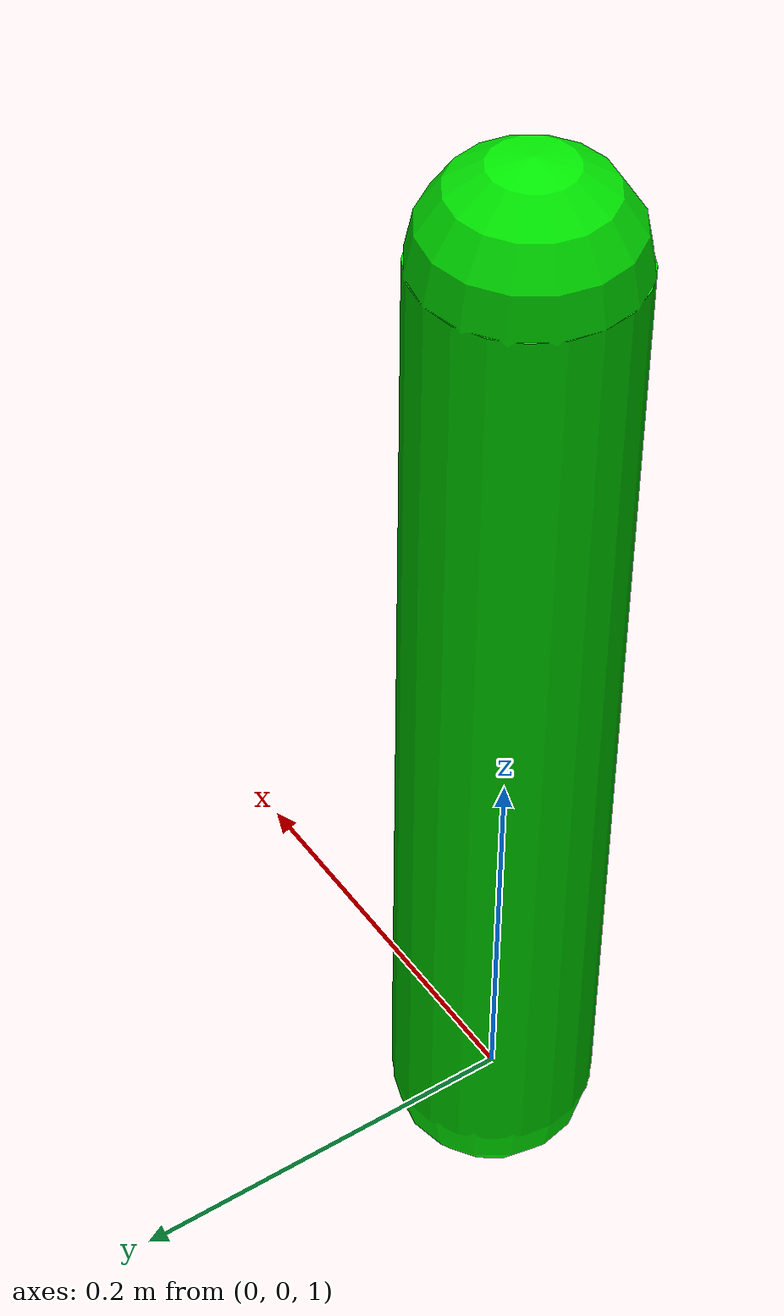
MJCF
<mujoco>
  <worldbody>
    <light diffuse=".5 .5 .5" pos="0 0 3" dir="0 0 -1"/>
    <geom type="plane" size="1 1 0.1" rgba=".9 0 0 1"/>
    <body pos="0 0 1">
      <joint type="hinge" name="hinge" pos="0 0 0" axis="0 1 0"/>
      <geom type="capsule" name="pole" fromto="0 0 0 0 0 0.5" size="0.05" rgba="0 .9 0 1"/>
    </body>
  </worldbody>
  <actuator>
    <motor joint="hinge" gear="1"/>
  </actuator>
</mujoco>
